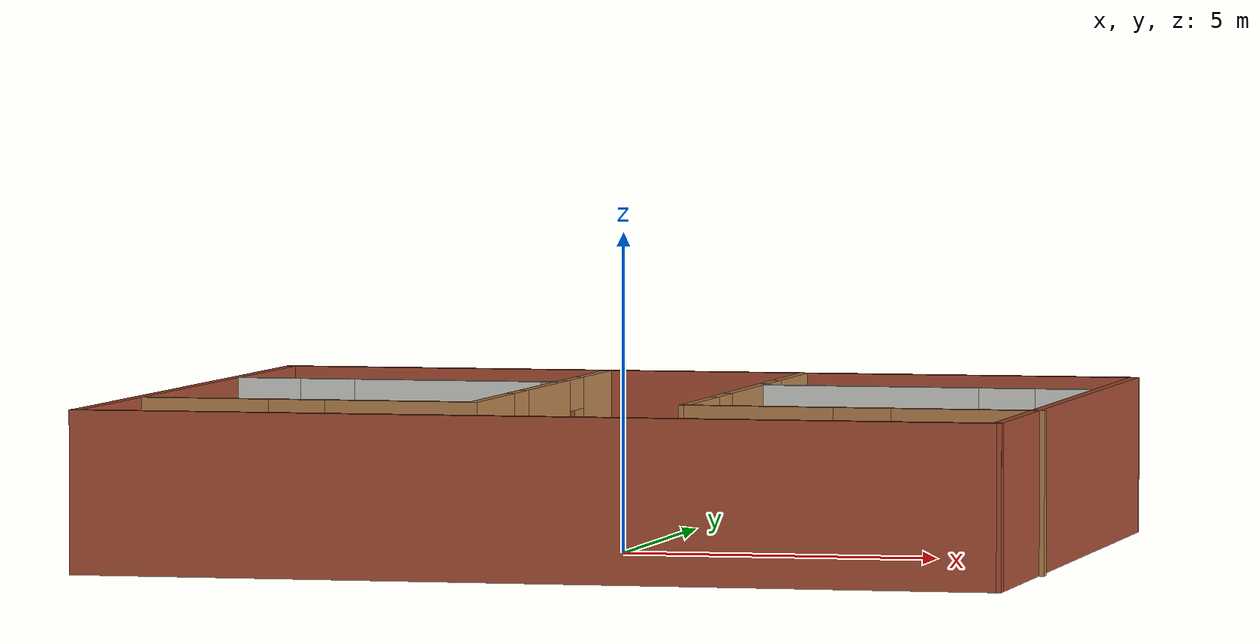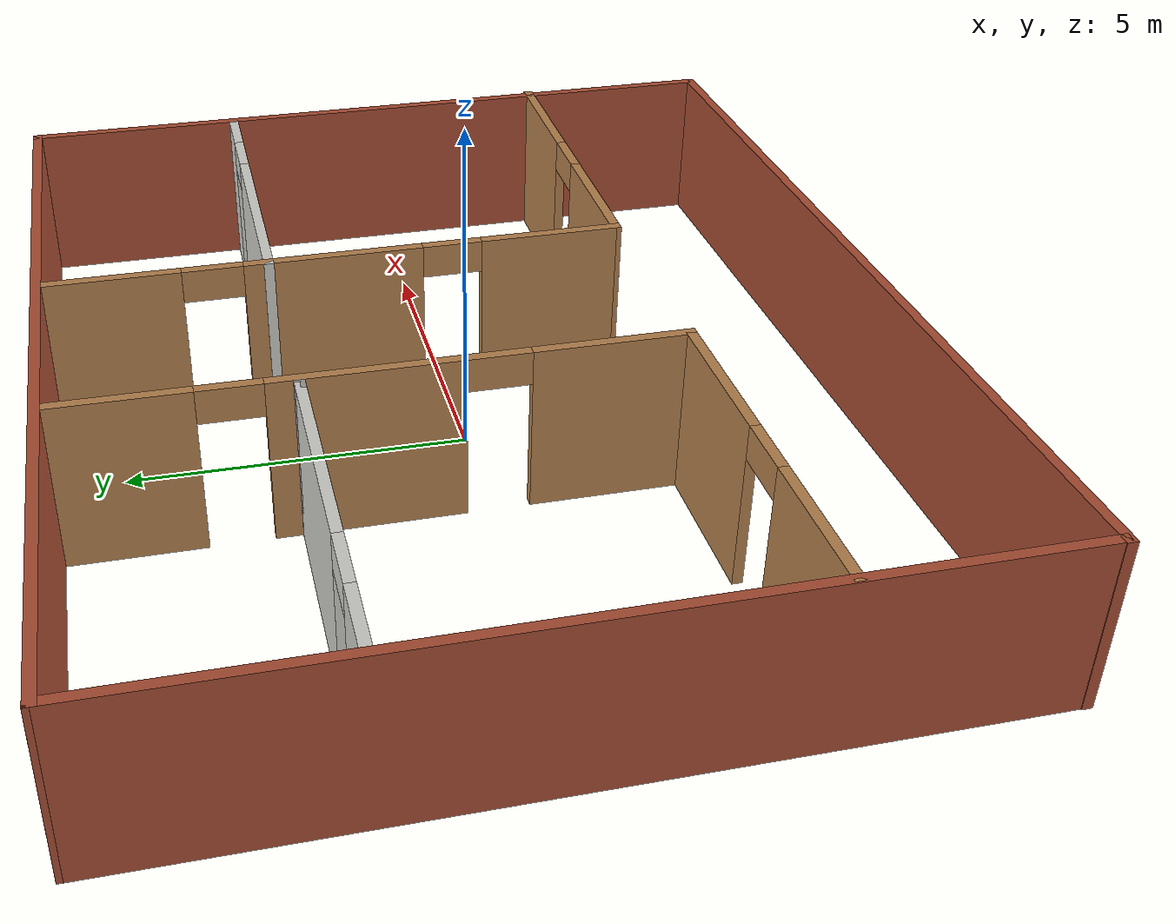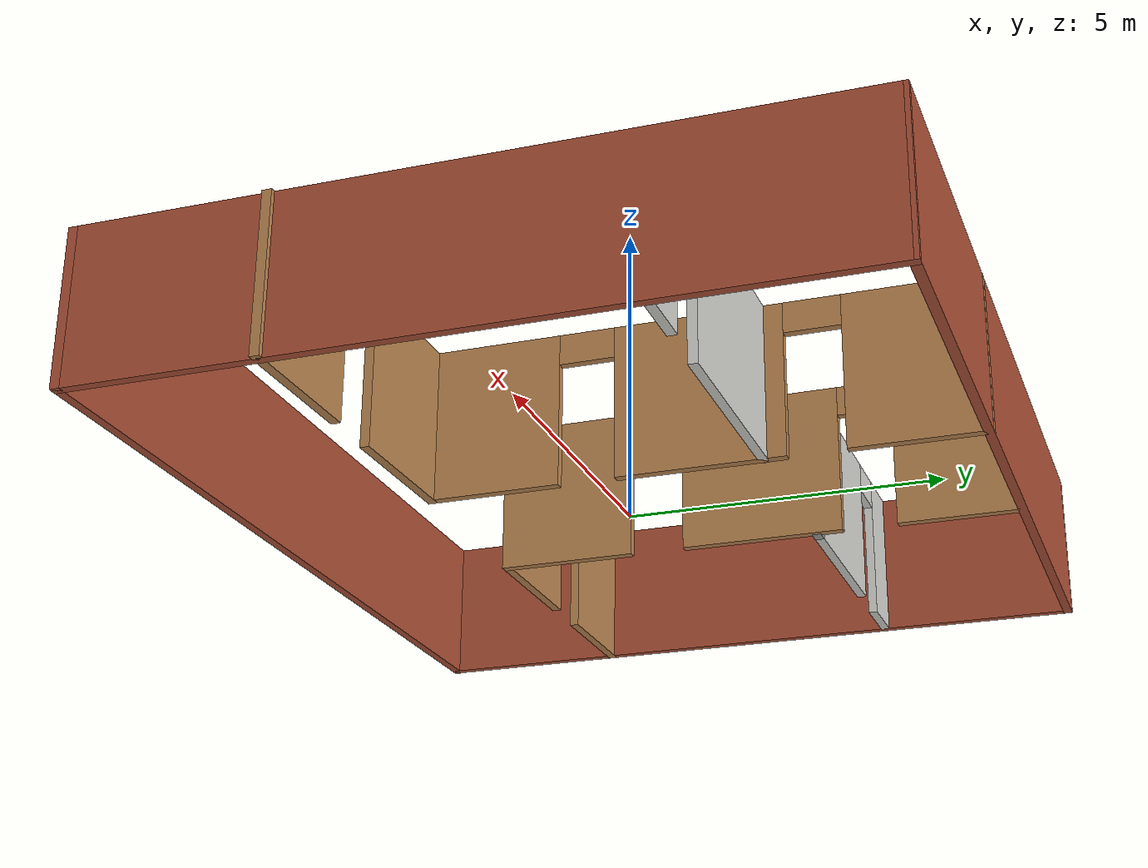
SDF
<?xml version='1.0'?>
<sdf version='1.7'>
  <model name='my_floor'>
    <pose>0.034224 -0.014651 0 0 -0 0</pose>
    <link name='Wall_10'>
      <pose>-4.47147 2.60553 0 0 -0 0</pose>
      <visual name='Wall_10_Visual_0'>
        <pose>-2.07168 0 1.25 0 -0 0</pose>
        <geometry>
          <box>
            <size>1.10664 0.15 2.5</size>
          </box>
        </geometry>
        <material>
          <script>
            <uri>file://media/materials/scripts/gazebo.material</uri>
            <name>Gazebo/CeilingTiled</name>
          </script>
          <ambient>1 1 1 1</ambient>
        </material>
        <meta>
          <layer>0</layer>
        </meta>
      </visual>
      <collision name='Wall_10_Collision_0'>
        <geometry>
          <box>
            <size>1.10664 0.15 2.5</size>
          </box>
        </geometry>
        <pose>-2.07168 0 1.25 0 -0 0</pose>
      </collision>
      <visual name='Wall_10_Visual_1'>
        <pose>1.00332 0 1.25 0 -0 0</pose>
        <geometry>
          <box>
            <size>3.24336 0.15 2.5</size>
          </box>
        </geometry>
        <material>
          <script>
            <uri>file://media/materials/scripts/gazebo.material</uri>
            <name>Gazebo/CeilingTiled</name>
          </script>
          <ambient>1 1 1 1</ambient>
        </material>
        <meta>
          <layer>0</layer>
        </meta>
      </visual>
      <collision name='Wall_10_Collision_1'>
        <geometry>
          <box>
            <size>3.24336 0.15 2.5</size>
          </box>
        </geometry>
        <pose>1.00332 0 1.25 0 -0 0</pose>
      </collision>
      <visual name='Wall_10_Visual_2'>
        <pose>-1.06836 0 2.25 0 -0 0</pose>
        <geometry>
          <box>
            <size>0.9 0.15 0.5</size>
          </box>
        </geometry>
        <material>
          <script>
            <uri>file://media/materials/scripts/gazebo.material</uri>
            <name>Gazebo/CeilingTiled</name>
          </script>
          <ambient>1 1 1 1</ambient>
        </material>
        <meta>
          <layer>0</layer>
        </meta>
      </visual>
      <collision name='Wall_10_Collision_2'>
        <geometry>
          <box>
            <size>0.9 0.15 0.5</size>
          </box>
        </geometry>
        <pose>-1.06836 0 2.25 0 -0 0</pose>
      </collision>
    </link>
    <link name='Wall_11'>
      <collision name='Wall_11_Collision'>
        <geometry>
          <box>
            <size>0.25 0.15 2.5</size>
          </box>
        </geometry>
        <pose>0 0 1.25 0 -0 0</pose>
      </collision>
      <visual name='Wall_11_Visual'>
        <pose>0 0 1.25 0 -0 0</pose>
        <geometry>
          <box>
            <size>0.25 0.15 2.5</size>
          </box>
        </geometry>
        <material>
          <script>
            <uri>file://media/materials/scripts/gazebo.material</uri>
            <name>Gazebo/Grey</name>
          </script>
          <ambient>1 1 1 1</ambient>
        </material>
        <meta>
          <layer>0</layer>
        </meta>
      </visual>
      <pose>-1.87147 2.60553 0 0 -0 0</pose>
    </link>
    <link name='Wall_14'>
      <pose>1.56164 1.6282 0 0 -0 -1.56726</pose>
      <visual name='Wall_14_Visual_0'>
        <pose>-3.33525 0 1.25 0 -0 0</pose>
        <geometry>
          <box>
            <size>2.13675 0.15 2.5</size>
          </box>
        </geometry>
        <material>
          <script>
            <uri>file://media/materials/scripts/gazebo.material</uri>
            <name>Gazebo/Wood</name>
          </script>
          <ambient>1 1 1 1</ambient>
        </material>
        <meta>
          <layer>0</layer>
        </meta>
      </visual>
      <collision name='Wall_14_Collision_0'>
        <geometry>
          <box>
            <size>2.13675 0.15 2.5</size>
          </box>
        </geometry>
        <pose>-3.33525 0 1.25 0 -0 0</pose>
      </collision>
      <visual name='Wall_14_Visual_1'>
        <pose>-0.027732 0 1.25 0 -0 0</pose>
        <geometry>
          <box>
            <size>2.67828 0.15 2.5</size>
          </box>
        </geometry>
        <material>
          <script>
            <uri>file://media/materials/scripts/gazebo.material</uri>
            <name>Gazebo/Wood</name>
          </script>
          <ambient>1 1 1 1</ambient>
        </material>
        <meta>
          <layer>0</layer>
        </meta>
      </visual>
      <collision name='Wall_14_Collision_1'>
        <geometry>
          <box>
            <size>2.67828 0.15 2.5</size>
          </box>
        </geometry>
        <pose>-0.027732 0 1.25 0 -0 0</pose>
      </collision>
      <visual name='Wall_14_Visual_2'>
        <pose>3.30752 0 1.25 0 -0 0</pose>
        <geometry>
          <box>
            <size>2.19222 0.15 2.5</size>
          </box>
        </geometry>
        <material>
          <script>
            <uri>file://media/materials/scripts/gazebo.material</uri>
            <name>Gazebo/Wood</name>
          </script>
          <ambient>1 1 1 1</ambient>
        </material>
        <meta>
          <layer>0</layer>
        </meta>
      </visual>
      <collision name='Wall_14_Collision_2'>
        <geometry>
          <box>
            <size>2.19222 0.15 2.5</size>
          </box>
        </geometry>
        <pose>3.30752 0 1.25 0 -0 0</pose>
      </collision>
      <visual name='Wall_14_Visual_3'>
        <pose>-1.81687 0 2.25 0 -0 0</pose>
        <geometry>
          <box>
            <size>0.9 0.15 0.5</size>
          </box>
        </geometry>
        <material>
          <script>
            <uri>file://media/materials/scripts/gazebo.material</uri>
            <name>Gazebo/Wood</name>
          </script>
          <ambient>1 1 1 1</ambient>
        </material>
        <meta>
          <layer>0</layer>
        </meta>
      </visual>
      <collision name='Wall_14_Collision_3'>
        <geometry>
          <box>
            <size>0.9 0.15 0.5</size>
          </box>
        </geometry>
        <pose>-1.81687 0 2.25 0 -0 0</pose>
      </collision>
      <visual name='Wall_14_Visual_4'>
        <pose>1.76141 0 2.25 0 -0 0</pose>
        <geometry>
          <box>
            <size>0.9 0.15 0.5</size>
          </box>
        </geometry>
        <material>
          <script>
            <uri>file://media/materials/scripts/gazebo.material</uri>
            <name>Gazebo/Wood</name>
          </script>
          <ambient>1 1 1 1</ambient>
        </material>
        <meta>
          <layer>0</layer>
        </meta>
      </visual>
      <collision name='Wall_14_Collision_4'>
        <geometry>
          <box>
            <size>0.9 0.15 0.5</size>
          </box>
        </geometry>
        <pose>1.76141 0 2.25 0 -0 0</pose>
      </collision>
    </link>
    <link name='Wall_15'>
      <pose>4.34535 -2.7309 0 0 -0 -0.011049</pose>
      <visual name='Wall_15_Visual_0'>
        <pose>-1.63443 0 1.25 0 -0 0</pose>
        <geometry>
          <box>
            <size>2.41831 0.15 2.5</size>
          </box>
        </geometry>
        <material>
          <script>
            <uri>file://media/materials/scripts/gazebo.material</uri>
            <name>Gazebo/Wood</name>
          </script>
          <ambient>1 1 1 1</ambient>
        </material>
        <meta>
          <layer>0</layer>
        </meta>
      </visual>
      <collision name='Wall_15_Collision_0'>
        <geometry>
          <box>
            <size>2.41831 0.15 2.5</size>
          </box>
        </geometry>
        <pose>-1.63443 0 1.25 0 -0 0</pose>
      </collision>
      <visual name='Wall_15_Visual_1'>
        <pose>1.65916 0 1.25 0 -0 0</pose>
        <geometry>
          <box>
            <size>2.36886 0.15 2.5</size>
          </box>
        </geometry>
        <material>
          <script>
            <uri>file://media/materials/scripts/gazebo.material</uri>
            <name>Gazebo/Wood</name>
          </script>
          <ambient>1 1 1 1</ambient>
        </material>
        <meta>
          <layer>0</layer>
        </meta>
      </visual>
      <collision name='Wall_15_Collision_1'>
        <geometry>
          <box>
            <size>2.36886 0.15 2.5</size>
          </box>
        </geometry>
        <pose>1.65916 0 1.25 0 -0 0</pose>
      </collision>
      <visual name='Wall_15_Visual_2'>
        <pose>0.024726 0 2.25 0 -0 0</pose>
        <geometry>
          <box>
            <size>0.9 0.15 0.5</size>
          </box>
        </geometry>
        <material>
          <script>
            <uri>file://media/materials/scripts/gazebo.material</uri>
            <name>Gazebo/Wood</name>
          </script>
          <ambient>1 1 1 1</ambient>
        </material>
        <meta>
          <layer>0</layer>
        </meta>
      </visual>
      <collision name='Wall_15_Collision_2'>
        <geometry>
          <box>
            <size>0.9 0.15 0.5</size>
          </box>
        </geometry>
        <pose>0.024726 0 2.25 0 -0 0</pose>
      </collision>
    </link>
    <link name='Wall_17'>
      <pose>4.22135 2.62239 0 0 -0 0</pose>
      <visual name='Wall_17_Visual_0'>
        <pose>-0.928464 0 1.25 0 -0 0</pose>
        <geometry>
          <box>
            <size>3.64307 0.15 2.5</size>
          </box>
        </geometry>
        <material>
          <script>
            <uri>file://media/materials/scripts/gazebo.material</uri>
            <name>Gazebo/CeilingTiled</name>
          </script>
          <ambient>1 1 1 1</ambient>
        </material>
        <meta>
          <layer>0</layer>
        </meta>
      </visual>
      <collision name='Wall_17_Collision_0'>
        <geometry>
          <box>
            <size>3.64307 0.15 2.5</size>
          </box>
        </geometry>
        <pose>-0.928464 0 1.25 0 -0 0</pose>
      </collision>
      <visual name='Wall_17_Visual_1'>
        <pose>2.27154 0 1.25 0 -0 0</pose>
        <geometry>
          <box>
            <size>0.956927 0.15 2.5</size>
          </box>
        </geometry>
        <material>
          <script>
            <uri>file://media/materials/scripts/gazebo.material</uri>
            <name>Gazebo/CeilingTiled</name>
          </script>
          <ambient>1 1 1 1</ambient>
        </material>
        <meta>
          <layer>0</layer>
        </meta>
      </visual>
      <collision name='Wall_17_Collision_1'>
        <geometry>
          <box>
            <size>0.956927 0.15 2.5</size>
          </box>
        </geometry>
        <pose>2.27154 0 1.25 0 -0 0</pose>
      </collision>
      <visual name='Wall_17_Visual_2'>
        <pose>1.34307 0 2.25 0 -0 0</pose>
        <geometry>
          <box>
            <size>0.9 0.15 0.5</size>
          </box>
        </geometry>
        <material>
          <script>
            <uri>file://media/materials/scripts/gazebo.material</uri>
            <name>Gazebo/CeilingTiled</name>
          </script>
          <ambient>1 1 1 1</ambient>
        </material>
        <meta>
          <layer>0</layer>
        </meta>
      </visual>
      <collision name='Wall_17_Collision_2'>
        <geometry>
          <box>
            <size>0.9 0.15 0.5</size>
          </box>
        </geometry>
        <pose>1.34307 0 2.25 0 -0 0</pose>
      </collision>
    </link>
    <link name='Wall_19'>
      <pose>-1.72936 1.55224 0 0 -0 1.5708</pose>
      <visual name='Wall_19_Visual_0'>
        <pose>-3.22486 0 1.25 0 -0 0</pose>
        <geometry>
          <box>
            <size>2.30027 0.15 2.5</size>
          </box>
        </geometry>
        <material>
          <script>
            <uri>file://media/materials/scripts/gazebo.material</uri>
            <name>Gazebo/Wood</name>
          </script>
          <ambient>1 1 1 1</ambient>
        </material>
        <meta>
          <layer>0</layer>
        </meta>
      </visual>
      <collision name='Wall_19_Collision_0'>
        <geometry>
          <box>
            <size>2.30027 0.15 2.5</size>
          </box>
        </geometry>
        <pose>-3.22486 0 1.25 0 -0 0</pose>
      </collision>
      <visual name='Wall_19_Visual_1'>
        <pose>0.164802 0 1.25 0 -0 0</pose>
        <geometry>
          <box>
            <size>2.67906 0.15 2.5</size>
          </box>
        </geometry>
        <material>
          <script>
            <uri>file://media/materials/scripts/gazebo.material</uri>
            <name>Gazebo/Wood</name>
          </script>
          <ambient>1 1 1 1</ambient>
        </material>
        <meta>
          <layer>0</layer>
        </meta>
      </visual>
      <collision name='Wall_19_Collision_1'>
        <geometry>
          <box>
            <size>2.67906 0.15 2.5</size>
          </box>
        </geometry>
        <pose>0.164802 0 1.25 0 -0 0</pose>
      </collision>
      <visual name='Wall_19_Visual_2'>
        <pose>3.38966 0 1.25 0 -0 0</pose>
        <geometry>
          <box>
            <size>1.97067 0.15 2.5</size>
          </box>
        </geometry>
        <material>
          <script>
            <uri>file://media/materials/scripts/gazebo.material</uri>
            <name>Gazebo/Wood</name>
          </script>
          <ambient>1 1 1 1</ambient>
        </material>
        <meta>
          <layer>0</layer>
        </meta>
      </visual>
      <collision name='Wall_19_Collision_2'>
        <geometry>
          <box>
            <size>1.97067 0.15 2.5</size>
          </box>
        </geometry>
        <pose>3.38966 0 1.25 0 -0 0</pose>
      </collision>
      <visual name='Wall_19_Visual_3'>
        <pose>-1.62473 0 2.25 0 -0 0</pose>
        <geometry>
          <box>
            <size>0.9 0.15 0.5</size>
          </box>
        </geometry>
        <material>
          <script>
            <uri>file://media/materials/scripts/gazebo.material</uri>
            <name>Gazebo/Wood</name>
          </script>
          <ambient>1 1 1 1</ambient>
        </material>
        <meta>
          <layer>0</layer>
        </meta>
      </visual>
      <collision name='Wall_19_Collision_3'>
        <geometry>
          <box>
            <size>0.9 0.15 0.5</size>
          </box>
        </geometry>
        <pose>-1.62473 0 2.25 0 -0 0</pose>
      </collision>
      <visual name='Wall_19_Visual_4'>
        <pose>1.95433 0 2.25 0 -0 0</pose>
        <geometry>
          <box>
            <size>0.9 0.15 0.5</size>
          </box>
        </geometry>
        <material>
          <script>
            <uri>file://media/materials/scripts/gazebo.material</uri>
            <name>Gazebo/Wood</name>
          </script>
          <ambient>1 1 1 1</ambient>
        </material>
        <meta>
          <layer>0</layer>
        </meta>
      </visual>
      <collision name='Wall_19_Collision_4'>
        <geometry>
          <box>
            <size>0.9 0.15 0.5</size>
          </box>
        </geometry>
        <pose>1.95433 0 2.25 0 -0 0</pose>
      </collision>
    </link>
    <link name='Wall_2'>
      <collision name='Wall_2_Collision'>
        <geometry>
          <box>
            <size>14.3149 0.15 2.5</size>
          </box>
        </geometry>
        <pose>0 0 1.25 0 -0 0</pose>
      </collision>
      <visual name='Wall_2_Visual'>
        <pose>0 0 1.25 0 -0 0</pose>
        <geometry>
          <box>
            <size>14.3149 0.15 2.5</size>
          </box>
        </geometry>
        <material>
          <script>
            <uri>file://media/materials/scripts/gazebo.material</uri>
            <name>Gazebo/Bricks</name>
          </script>
          <ambient>1 1 1 1</ambient>
        </material>
        <meta>
          <layer>0</layer>
        </meta>
      </visual>
      <pose>-0.031754 -5.90376 0 0 -0 0.009374</pose>
    </link>
    <link name='Wall_21'>
      <collision name='Wall_21_Collision'>
        <geometry>
          <box>
            <size>12 0.15 2.5</size>
          </box>
        </geometry>
        <pose>0 0 1.25 0 -0 0</pose>
      </collision>
      <visual name='Wall_21_Visual'>
        <pose>0 0 1.25 0 -0 0</pose>
        <geometry>
          <box>
            <size>12 0.15 2.5</size>
          </box>
        </geometry>
        <material>
          <script>
            <uri>file://media/materials/scripts/gazebo.material</uri>
            <name>Gazebo/Bricks</name>
          </script>
          <ambient>1 1 1 1</ambient>
        </material>
        <meta>
          <layer>0</layer>
        </meta>
      </visual>
      <pose>-7.10122 0.001437 0 0 -0 -1.5708</pose>
    </link>
    <link name='Wall_3'>
      <collision name='Wall_3_Collision'>
        <geometry>
          <box>
            <size>11.958 0.15 2.5</size>
          </box>
        </geometry>
        <pose>0 0 1.25 0 -0 0</pose>
      </collision>
      <visual name='Wall_3_Visual'>
        <pose>0 0 1.25 0 -0 0</pose>
        <geometry>
          <box>
            <size>11.958 0.15 2.5</size>
          </box>
        </geometry>
        <material>
          <script>
            <uri>file://media/materials/scripts/gazebo.material</uri>
            <name>Gazebo/Bricks</name>
          </script>
          <ambient>1 1 1 1</ambient>
        </material>
        <meta>
          <layer>0</layer>
        </meta>
      </visual>
      <pose>7.01944 0.066545 0 0 -0 1.57598</pose>
    </link>
    <link name='Wall_4'>
      <collision name='Wall_4_Collision'>
        <geometry>
          <box>
            <size>14.2401 0.15 2.5</size>
          </box>
        </geometry>
        <pose>0 0 1.25 0 -0 0</pose>
      </collision>
      <visual name='Wall_4_Visual'>
        <pose>0 0 1.25 0 -0 0</pose>
        <geometry>
          <box>
            <size>14.2401 0.15 2.5</size>
          </box>
        </geometry>
        <material>
          <script>
            <uri>file://media/materials/scripts/gazebo.material</uri>
            <name>Gazebo/Bricks</name>
          </script>
          <ambient>1 1 1 1</ambient>
        </material>
        <meta>
          <layer>0</layer>
        </meta>
      </visual>
      <pose>-0.056185 5.94845 0 0 -0 -3.13847</pose>
    </link>
    <link name='Wall_8'>
      <pose>-4.40436 -2.74776 0 0 -0 3.14159</pose>
      <visual name='Wall_8_Visual_0'>
        <pose>-1.537 0 1.25 0 -0 0</pose>
        <geometry>
          <box>
            <size>2.42599 0.15 2.5</size>
          </box>
        </geometry>
        <material>
          <script>
            <uri>file://media/materials/scripts/gazebo.material</uri>
            <name>Gazebo/Wood</name>
          </script>
          <ambient>1 1 1 1</ambient>
        </material>
        <meta>
          <layer>0</layer>
        </meta>
      </visual>
      <collision name='Wall_8_Collision_0'>
        <geometry>
          <box>
            <size>2.42599 0.15 2.5</size>
          </box>
        </geometry>
        <pose>-1.537 0 1.25 0 -0 0</pose>
      </collision>
      <visual name='Wall_8_Visual_1'>
        <pose>1.663 0 1.25 0 -0 0</pose>
        <geometry>
          <box>
            <size>2.17401 0.15 2.5</size>
          </box>
        </geometry>
        <material>
          <script>
            <uri>file://media/materials/scripts/gazebo.material</uri>
            <name>Gazebo/Wood</name>
          </script>
          <ambient>1 1 1 1</ambient>
        </material>
        <meta>
          <layer>0</layer>
        </meta>
      </visual>
      <collision name='Wall_8_Collision_1'>
        <geometry>
          <box>
            <size>2.17401 0.15 2.5</size>
          </box>
        </geometry>
        <pose>1.663 0 1.25 0 -0 0</pose>
      </collision>
      <visual name='Wall_8_Visual_2'>
        <pose>0.125992 0 2.25 0 -0 0</pose>
        <geometry>
          <box>
            <size>0.9 0.15 0.5</size>
          </box>
        </geometry>
        <material>
          <script>
            <uri>file://media/materials/scripts/gazebo.material</uri>
            <name>Gazebo/Wood</name>
          </script>
          <ambient>1 1 1 1</ambient>
        </material>
        <meta>
          <layer>0</layer>
        </meta>
      </visual>
      <collision name='Wall_8_Collision_2'>
        <geometry>
          <box>
            <size>0.9 0.15 0.5</size>
          </box>
        </geometry>
        <pose>0.125992 0 2.25 0 -0 0</pose>
      </collision>
    </link>
    <static>1</static>
  </model>
</sdf>
